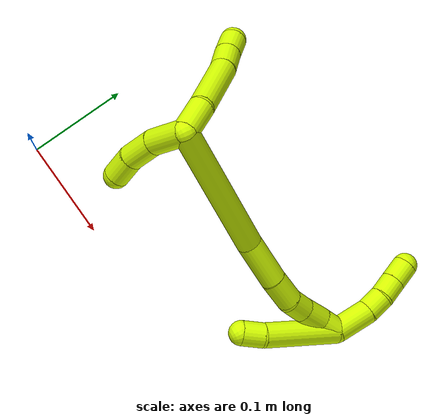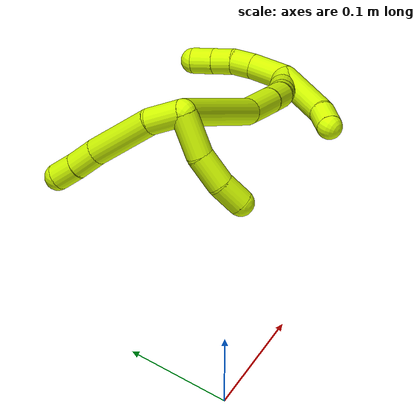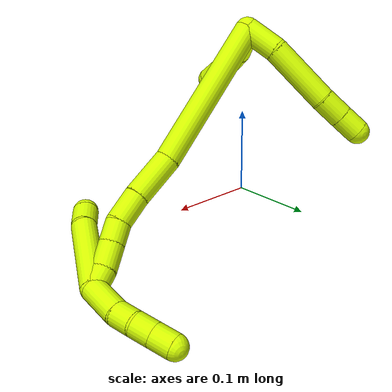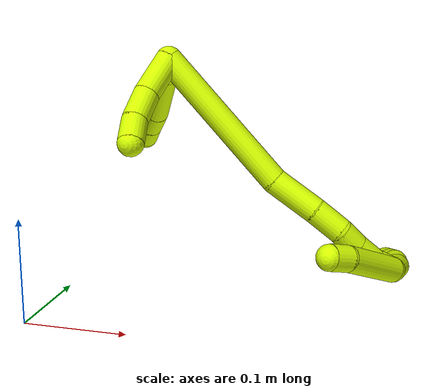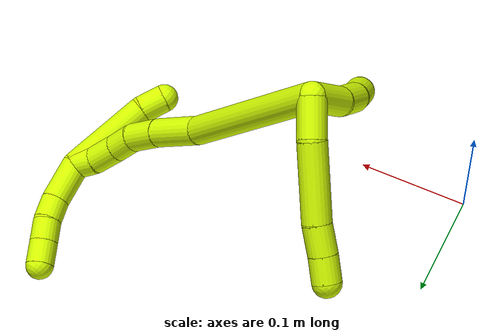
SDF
<sdf version="1.7">
 <world name="default">
  <model name="15">
   <static>0</static>
   <link name="15">
    <collision name="collision-cylinder-e_1_2_8">
     <pose>-0.003615 0.010711 0.013088 -0.685824 -0.210607 0.075434</pose>
     <geometry><cylinder><radius>0.0125</radius><length>0.034589</length></cylinder></geometry>
     <surface>
      <friction><ode><mu>1.16</mu><mu2>1.16</mu2><slip1>0</slip1><slip2>0</slip2></ode></friction>
      <contact><ode><kp>1e+06</kp><kd>1</kd><max_vel>0</max_vel><min_depth>0.001</min_depth></ode></contact>
     </surface>
    </collision>
    <visual name="visual-cylinder-e_1_2_8">
     <pose>-0.003615 0.010711 0.013088 -0.685824 -0.210607 0.075434</pose>
     <geometry><cylinder><radius>0.0125</radius><length>0.034589</length></cylinder></geometry>
     <material><ambient>0.835294 1 0 1</ambient></material>
    </visual>
    <collision name="collision-cylinder-e_2_8_9">
     <pose>-0.010475 0.047329 0.046991 -0.893997 -0.097315 0.046677</pose>
     <geometry><cylinder><radius>0.0125</radius><length>0.066782</length></cylinder></geometry>
     <surface>
      <friction><ode><mu>1.16</mu><mu2>1.16</mu2><slip1>0</slip1><slip2>0</slip2></ode></friction>
      <contact><ode><kp>1e+06</kp><kd>1</kd><max_vel>0</max_vel><min_depth>0.001</min_depth></ode></contact>
     </surface>
    </collision>
    <visual name="visual-cylinder-e_2_8_9">
     <pose>-0.010475 0.047329 0.046991 -0.893997 -0.097315 0.046677</pose>
     <geometry><cylinder><radius>0.0125</radius><length>0.066782</length></cylinder></geometry>
     <material><ambient>0.835294 1 0 1</ambient></material>
    </visual>
    <collision name="collision-cylinder-e_3_9_10">
     <pose>-0.016193 0.083789 0.074762 -0.987879 -0.193287 0.104307</pose>
     <geometry><cylinder><radius>0.0125</radius><length>0.025756</length></cylinder></geometry>
     <surface>
      <friction><ode><mu>1.16</mu><mu2>1.16</mu2><slip1>0</slip1><slip2>0</slip2></ode></friction>
      <contact><ode><kp>1e+06</kp><kd>1</kd><max_vel>0</max_vel><min_depth>0.001</min_depth></ode></contact>
     </surface>
    </collision>
    <visual name="visual-cylinder-e_3_9_10">
     <pose>-0.016193 0.083789 0.074762 -0.987879 -0.193287 0.104307</pose>
     <geometry><cylinder><radius>0.0125</radius><length>0.025756</length></cylinder></geometry>
     <material><ambient>0.835294 1 0 1</ambient></material>
    </visual>
    <collision name="collision-cylinder-e_4_10_6">
     <pose>-0.020695 0.103328 0.088493 -0.924898 -0.178238 0.089029</pose>
     <geometry><cylinder><radius>0.0125</radius><length>0.022873</length></cylinder></geometry>
     <surface>
      <friction><ode><mu>1.16</mu><mu2>1.16</mu2><slip1>0</slip1><slip2>0</slip2></ode></friction>
      <contact><ode><kp>1e+06</kp><kd>1</kd><max_vel>0</max_vel><min_depth>0.001</min_depth></ode></contact>
     </surface>
    </collision>
    <visual name="visual-cylinder-e_4_10_6">
     <pose>-0.020695 0.103328 0.088493 -0.924898 -0.178238 0.089029</pose>
     <geometry><cylinder><radius>0.0125</radius><length>0.022873</length></cylinder></geometry>
     <material><ambient>0.835294 1 0 1</ambient></material>
    </visual>
    <collision name="collision-cylinder-e_1_2_11">
     <pose>0.003413 0.016462 -0.012394 -2.21614 0.164155 -0.326867</pose>
     <geometry><cylinder><radius>0.0125</radius><length>0.041774</length></cylinder></geometry>
     <surface>
      <friction><ode><mu>1.16</mu><mu2>1.16</mu2><slip1>0</slip1><slip2>0</slip2></ode></friction>
      <contact><ode><kp>1e+06</kp><kd>1</kd><max_vel>0</max_vel><min_depth>0.001</min_depth></ode></contact>
     </surface>
    </collision>
    <visual name="visual-cylinder-e_1_2_11">
     <pose>0.003413 0.016462 -0.012394 -2.21614 0.164155 -0.326867</pose>
     <geometry><cylinder><radius>0.0125</radius><length>0.041774</length></cylinder></geometry>
     <material><ambient>0.835294 1 0 1</ambient></material>
    </visual>
    <collision name="collision-cylinder-e_2_11_12">
     <pose>0.012364 0.043072 -0.035781 -2.39614 0.354501 -0.859191</pose>
     <geometry><cylinder><radius>0.0125</radius><length>0.031905</length></cylinder></geometry>
     <surface>
      <friction><ode><mu>1.16</mu><mu2>1.16</mu2><slip1>0</slip1><slip2>0</slip2></ode></friction>
      <contact><ode><kp>1e+06</kp><kd>1</kd><max_vel>0</max_vel><min_depth>0.001</min_depth></ode></contact>
     </surface>
    </collision>
    <visual name="visual-cylinder-e_2_11_12">
     <pose>0.012364 0.043072 -0.035781 -2.39614 0.354501 -0.859191</pose>
     <geometry><cylinder><radius>0.0125</radius><length>0.031905</length></cylinder></geometry>
     <material><ambient>0.835294 1 0 1</ambient></material>
    </visual>
    <collision name="collision-cylinder-e_3_12_5">
     <pose>0.024997 0.060187 -0.055395 -2.46193 0.569406 -1.38288</pose>
     <geometry><cylinder><radius>0.0125</radius><length>0.026321</length></cylinder></geometry>
     <surface>
      <friction><ode><mu>1.16</mu><mu2>1.16</mu2><slip1>0</slip1><slip2>0</slip2></ode></friction>
      <contact><ode><kp>1e+06</kp><kd>1</kd><max_vel>0</max_vel><min_depth>0.001</min_depth></ode></contact>
     </surface>
    </collision>
    <visual name="visual-cylinder-e_3_12_5">
     <pose>0.024997 0.060187 -0.055395 -2.46193 0.569406 -1.38288</pose>
     <geometry><cylinder><radius>0.0125</radius><length>0.026321</length></cylinder></geometry>
     <material><ambient>0.835294 1 0 1</ambient></material>
    </visual>
    <collision name="collision-cylinder-e_1_2_13">
     <pose>0.07168 0.023523 0.011474 -1.11698 1.22071 -0.824056</pose>
     <geometry><cylinder><radius>0.0125</radius><length>0.152617</length></cylinder></geometry>
     <surface>
      <friction><ode><mu>1.16</mu><mu2>1.16</mu2><slip1>0</slip1><slip2>0</slip2></ode></friction>
      <contact><ode><kp>1e+06</kp><kd>1</kd><max_vel>0</max_vel><min_depth>0.001</min_depth></ode></contact>
     </surface>
    </collision>
    <visual name="visual-cylinder-e_1_2_13">
     <pose>0.07168 0.023523 0.011474 -1.11698 1.22071 -0.824056</pose>
     <geometry><cylinder><radius>0.0125</radius><length>0.152617</length></cylinder></geometry>
     <material><ambient>0.835294 1 0 1</ambient></material>
    </visual>
    <collision name="collision-cylinder-e_2_13_14">
     <pose>0.166586 0.0492 0.027283 -0.461073 1.36535 -0.377146</pose>
     <geometry><cylinder><radius>0.0125</radius><length>0.047451</length></cylinder></geometry>
     <surface>
      <friction><ode><mu>1.16</mu><mu2>1.16</mu2><slip1>0</slip1><slip2>0</slip2></ode></friction>
      <contact><ode><kp>1e+06</kp><kd>1</kd><max_vel>0</max_vel><min_depth>0.001</min_depth></ode></contact>
     </surface>
    </collision>
    <visual name="visual-cylinder-e_2_13_14">
     <pose>0.166586 0.0492 0.027283 -0.461073 1.36535 -0.377146</pose>
     <geometry><cylinder><radius>0.0125</radius><length>0.047451</length></cylinder></geometry>
     <material><ambient>0.835294 1 0 1</ambient></material>
    </visual>
    <collision name="collision-cylinder-e_3_14_15">
     <pose>0.204619 0.05371 0.035426 -0.554066 1.2771 -0.416028</pose>
     <geometry><cylinder><radius>0.0125</radius><length>0.030937</length></cylinder></geometry>
     <surface>
      <friction><ode><mu>1.16</mu><mu2>1.16</mu2><slip1>0</slip1><slip2>0</slip2></ode></friction>
      <contact><ode><kp>1e+06</kp><kd>1</kd><max_vel>0</max_vel><min_depth>0.001</min_depth></ode></contact>
     </surface>
    </collision>
    <visual name="visual-cylinder-e_3_14_15">
     <pose>0.204619 0.05371 0.035426 -0.554066 1.2771 -0.416028</pose>
     <geometry><cylinder><radius>0.0125</radius><length>0.030937</length></cylinder></geometry>
     <material><ambient>0.835294 1 0 1</ambient></material>
    </visual>
    <collision name="collision-cylinder-e_4_15_16">
     <pose>0.228546 0.059543 0.044183 -0.612456 0.985202 -0.336199</pose>
     <geometry><cylinder><radius>0.0125</radius><length>0.021888</length></cylinder></geometry>
     <surface>
      <friction><ode><mu>1.16</mu><mu2>1.16</mu2><slip1>0</slip1><slip2>0</slip2></ode></friction>
      <contact><ode><kp>1e+06</kp><kd>1</kd><max_vel>0</max_vel><min_depth>0.001</min_depth></ode></contact>
     </surface>
    </collision>
    <visual name="visual-cylinder-e_4_15_16">
     <pose>0.228546 0.059543 0.044183 -0.612456 0.985202 -0.336199</pose>
     <geometry><cylinder><radius>0.0125</radius><length>0.021888</length></cylinder></geometry>
     <material><ambient>0.835294 1 0 1</ambient></material>
    </visual>
    <collision name="collision-cylinder-e_5_16_17">
     <pose>0.248581 0.066268 0.056012 -0.441016 0.962073 -0.232925</pose>
     <geometry><cylinder><radius>0.0125</radius><length>0.02661</length></cylinder></geometry>
     <surface>
      <friction><ode><mu>1.16</mu><mu2>1.16</mu2><slip1>0</slip1><slip2>0</slip2></ode></friction>
      <contact><ode><kp>1e+06</kp><kd>1</kd><max_vel>0</max_vel><min_depth>0.001</min_depth></ode></contact>
     </surface>
    </collision>
    <visual name="visual-cylinder-e_5_16_17">
     <pose>0.248581 0.066268 0.056012 -0.441016 0.962073 -0.232925</pose>
     <geometry><cylinder><radius>0.0125</radius><length>0.02661</length></cylinder></geometry>
     <material><ambient>0.835294 1 0 1</ambient></material>
    </visual>
    <collision name="collision-cylinder-e_6_17_1">
     <pose>0.268331 0.069482 0.068086 0.006428 1.03931 0.003678</pose>
     <geometry><cylinder><radius>0.0125</radius><length>0.020497</length></cylinder></geometry>
     <surface>
      <friction><ode><mu>1.16</mu><mu2>1.16</mu2><slip1>0</slip1><slip2>0</slip2></ode></friction>
      <contact><ode><kp>1e+06</kp><kd>1</kd><max_vel>0</max_vel><min_depth>0.001</min_depth></ode></contact>
     </surface>
    </collision>
    <visual name="visual-cylinder-e_6_17_1">
     <pose>0.268331 0.069482 0.068086 0.006428 1.03931 0.003678</pose>
     <geometry><cylinder><radius>0.0125</radius><length>0.020497</length></cylinder></geometry>
     <material><ambient>0.835294 1 0 1</ambient></material>
    </visual>
    <collision name="collision-cylinder-e_1_1_18">
     <pose>0.276906 0.072744 0.09174 -0.17666 -0.013847 0.001226</pose>
     <geometry><cylinder><radius>0.0125</radius><length>0.037506</length></cylinder></geometry>
     <surface>
      <friction><ode><mu>1.16</mu><mu2>1.16</mu2><slip1>0</slip1><slip2>0</slip2></ode></friction>
      <contact><ode><kp>1e+06</kp><kd>1</kd><max_vel>0</max_vel><min_depth>0.001</min_depth></ode></contact>
     </surface>
    </collision>
    <visual name="visual-cylinder-e_1_1_18">
     <pose>0.276906 0.072744 0.09174 -0.17666 -0.013847 0.001226</pose>
     <geometry><cylinder><radius>0.0125</radius><length>0.037506</length></cylinder></geometry>
     <material><ambient>0.835294 1 0 1</ambient></material>
    </visual>
    <collision name="collision-cylinder-e_2_18_19">
     <pose>0.27416 0.077875 0.12026 -0.180483 -0.238495 0.021683</pose>
     <geometry><cylinder><radius>0.0125</radius><length>0.021051</length></cylinder></geometry>
     <surface>
      <friction><ode><mu>1.16</mu><mu2>1.16</mu2><slip1>0</slip1><slip2>0</slip2></ode></friction>
      <contact><ode><kp>1e+06</kp><kd>1</kd><max_vel>0</max_vel><min_depth>0.001</min_depth></ode></contact>
     </surface>
    </collision>
    <visual name="visual-cylinder-e_2_18_19">
     <pose>0.27416 0.077875 0.12026 -0.180483 -0.238495 0.021683</pose>
     <geometry><cylinder><radius>0.0125</radius><length>0.021051</length></cylinder></geometry>
     <material><ambient>0.835294 1 0 1</ambient></material>
    </visual>
    <collision name="collision-cylinder-e_3_19_20">
     <pose>0.268731 0.083409 0.139158 -0.396348 -0.298062 0.060283</pose>
     <geometry><cylinder><radius>0.0125</radius><length>0.020042</length></cylinder></geometry>
     <surface>
      <friction><ode><mu>1.16</mu><mu2>1.16</mu2><slip1>0</slip1><slip2>0</slip2></ode></friction>
      <contact><ode><kp>1e+06</kp><kd>1</kd><max_vel>0</max_vel><min_depth>0.001</min_depth></ode></contact>
     </surface>
    </collision>
    <visual name="visual-cylinder-e_3_19_20">
     <pose>0.268731 0.083409 0.139158 -0.396348 -0.298062 0.060283</pose>
     <geometry><cylinder><radius>0.0125</radius><length>0.020042</length></cylinder></geometry>
     <material><ambient>0.835294 1 0 1</ambient></material>
    </visual>
    <collision name="collision-cylinder-e_4_20_4">
     <pose>0.262628 0.090926 0.157478 -0.382836 -0.29979 0.058519</pose>
     <geometry><cylinder><radius>0.0125</radius><length>0.021401</length></cylinder></geometry>
     <surface>
      <friction><ode><mu>1.16</mu><mu2>1.16</mu2><slip1>0</slip1><slip2>0</slip2></ode></friction>
      <contact><ode><kp>1e+06</kp><kd>1</kd><max_vel>0</max_vel><min_depth>0.001</min_depth></ode></contact>
     </surface>
    </collision>
    <visual name="visual-cylinder-e_4_20_4">
     <pose>0.262628 0.090926 0.157478 -0.382836 -0.29979 0.058519</pose>
     <geometry><cylinder><radius>0.0125</radius><length>0.021401</length></cylinder></geometry>
     <material><ambient>0.835294 1 0 1</ambient></material>
    </visual>
    <collision name="collision-cylinder-e_1_1_21">
     <pose>0.260135 0.065909 0.038578 3.03995 -0.454204 -2.70828</pose>
     <geometry><cylinder><radius>0.0125</radius><length>0.077636</length></cylinder></geometry>
     <surface>
      <friction><ode><mu>1.16</mu><mu2>1.16</mu2><slip1>0</slip1><slip2>0</slip2></ode></friction>
      <contact><ode><kp>1e+06</kp><kd>1</kd><max_vel>0</max_vel><min_depth>0.001</min_depth></ode></contact>
     </surface>
    </collision>
    <visual name="visual-cylinder-e_1_1_21">
     <pose>0.260135 0.065909 0.038578 3.03995 -0.454204 -2.70828</pose>
     <geometry><cylinder><radius>0.0125</radius><length>0.077636</length></cylinder></geometry>
     <material><ambient>0.835294 1 0 1</ambient></material>
    </visual>
    <collision name="collision-cylinder-e_2_21_3">
     <pose>0.237152 0.063549 -0.005517 -3.01668 -0.561264 2.7143</pose>
     <geometry><cylinder><radius>0.0125</radius><length>0.022364</length></cylinder></geometry>
     <surface>
      <friction><ode><mu>1.16</mu><mu2>1.16</mu2><slip1>0</slip1><slip2>0</slip2></ode></friction>
      <contact><ode><kp>1e+06</kp><kd>1</kd><max_vel>0</max_vel><min_depth>0.001</min_depth></ode></contact>
     </surface>
    </collision>
    <visual name="visual-cylinder-e_2_21_3">
     <pose>0.237152 0.063549 -0.005517 -3.01668 -0.561264 2.7143</pose>
     <geometry><cylinder><radius>0.0125</radius><length>0.022364</length></cylinder></geometry>
     <material><ambient>0.835294 1 0 1</ambient></material>
    </visual>
    <collision name="collision-sphere-3">
     <pose>0.2312 0.064728 -0.01491 0 -0 0</pose>
     <geometry><sphere><radius>0.0125</radius></sphere></geometry>
     <surface>
      <friction><ode><mu>1.16</mu><mu2>1.16</mu2><slip1>0</slip1><slip2>0</slip2></ode></friction>
      <contact><ode><kp>1e+06</kp><kd>1</kd><max_vel>0</max_vel><min_depth>0.001</min_depth></ode></contact>
     </surface>
    </collision>
    <visual name="visual-sphere-3">
     <pose>0.2312 0.064728 -0.01491 0 -0 0</pose>
     <geometry><sphere><radius>0.0125</radius></sphere></geometry>
     <material><ambient>0.835294 1 0 1</ambient></material>
    </visual>
    <collision name="collision-sphere-21">
     <pose>0.243103 0.06237 0.003876 0 -0 0</pose>
     <geometry><sphere><radius>0.0125</radius></sphere></geometry>
     <surface>
      <friction><ode><mu>1.16</mu><mu2>1.16</mu2><slip1>0</slip1><slip2>0</slip2></ode></friction>
      <contact><ode><kp>1e+06</kp><kd>1</kd><max_vel>0</max_vel><min_depth>0.001</min_depth></ode></contact>
     </surface>
    </collision>
    <visual name="visual-sphere-21">
     <pose>0.243103 0.06237 0.003876 0 -0 0</pose>
     <geometry><sphere><radius>0.0125</radius></sphere></geometry>
     <material><ambient>0.835294 1 0 1</ambient></material>
    </visual>
    <collision name="collision-sphere-4">
     <pose>0.259468 0.094745 0.166961 0 -0 0</pose>
     <geometry><sphere><radius>0.0125</radius></sphere></geometry>
     <surface>
      <friction><ode><mu>1.16</mu><mu2>1.16</mu2><slip1>0</slip1><slip2>0</slip2></ode></friction>
      <contact><ode><kp>1e+06</kp><kd>1</kd><max_vel>0</max_vel><min_depth>0.001</min_depth></ode></contact>
     </surface>
    </collision>
    <visual name="visual-sphere-4">
     <pose>0.259468 0.094745 0.166961 0 -0 0</pose>
     <geometry><sphere><radius>0.0125</radius></sphere></geometry>
     <material><ambient>0.835294 1 0 1</ambient></material>
    </visual>
    <collision name="collision-sphere-20">
     <pose>0.265788 0.087107 0.147995 0 -0 0</pose>
     <geometry><sphere><radius>0.0125</radius></sphere></geometry>
     <surface>
      <friction><ode><mu>1.16</mu><mu2>1.16</mu2><slip1>0</slip1><slip2>0</slip2></ode></friction>
      <contact><ode><kp>1e+06</kp><kd>1</kd><max_vel>0</max_vel><min_depth>0.001</min_depth></ode></contact>
     </surface>
    </collision>
    <visual name="visual-sphere-20">
     <pose>0.265788 0.087107 0.147995 0 -0 0</pose>
     <geometry><sphere><radius>0.0125</radius></sphere></geometry>
     <material><ambient>0.835294 1 0 1</ambient></material>
    </visual>
    <collision name="collision-sphere-11">
     <pose>0.006827 0.032925 -0.024788 0 -0 0</pose>
     <geometry><sphere><radius>0.0125</radius></sphere></geometry>
     <surface>
      <friction><ode><mu>1.16</mu><mu2>1.16</mu2><slip1>0</slip1><slip2>0</slip2></ode></friction>
      <contact><ode><kp>1e+06</kp><kd>1</kd><max_vel>0</max_vel><min_depth>0.001</min_depth></ode></contact>
     </surface>
    </collision>
    <visual name="visual-sphere-11">
     <pose>0.006827 0.032925 -0.024788 0 -0 0</pose>
     <geometry><sphere><radius>0.0125</radius></sphere></geometry>
     <material><ambient>0.835294 1 0 1</ambient></material>
    </visual>
    <collision name="collision-sphere-6">
     <pose>-0.022722 0.112316 0.095268 0 -0 0</pose>
     <geometry><sphere><radius>0.0125</radius></sphere></geometry>
     <surface>
      <friction><ode><mu>1.16</mu><mu2>1.16</mu2><slip1>0</slip1><slip2>0</slip2></ode></friction>
      <contact><ode><kp>1e+06</kp><kd>1</kd><max_vel>0</max_vel><min_depth>0.001</min_depth></ode></contact>
     </surface>
    </collision>
    <visual name="visual-sphere-6">
     <pose>-0.022722 0.112316 0.095268 0 -0 0</pose>
     <geometry><sphere><radius>0.0125</radius></sphere></geometry>
     <material><ambient>0.835294 1 0 1</ambient></material>
    </visual>
    <collision name="collision-sphere-10">
     <pose>-0.018667 0.09434 0.081719 0 -0 0</pose>
     <geometry><sphere><radius>0.0125</radius></sphere></geometry>
     <surface>
      <friction><ode><mu>1.16</mu><mu2>1.16</mu2><slip1>0</slip1><slip2>0</slip2></ode></friction>
      <contact><ode><kp>1e+06</kp><kd>1</kd><max_vel>0</max_vel><min_depth>0.001</min_depth></ode></contact>
     </surface>
    </collision>
    <visual name="visual-sphere-10">
     <pose>-0.018667 0.09434 0.081719 0 -0 0</pose>
     <geometry><sphere><radius>0.0125</radius></sphere></geometry>
     <material><ambient>0.835294 1 0 1</ambient></material>
    </visual>
    <collision name="collision-sphere-9">
     <pose>-0.01372 0.073237 0.067805 0 -0 0</pose>
     <geometry><sphere><radius>0.0125</radius></sphere></geometry>
     <surface>
      <friction><ode><mu>1.16</mu><mu2>1.16</mu2><slip1>0</slip1><slip2>0</slip2></ode></friction>
      <contact><ode><kp>1e+06</kp><kd>1</kd><max_vel>0</max_vel><min_depth>0.001</min_depth></ode></contact>
     </surface>
    </collision>
    <visual name="visual-sphere-9">
     <pose>-0.01372 0.073237 0.067805 0 -0 0</pose>
     <geometry><sphere><radius>0.0125</radius></sphere></geometry>
     <material><ambient>0.835294 1 0 1</ambient></material>
    </visual>
    <collision name="collision-sphere-2">
     <geometry><sphere><radius>0.0125</radius></sphere></geometry>
     <surface>
      <friction><ode><mu>1.16</mu><mu2>1.16</mu2><slip1>0</slip1><slip2>0</slip2></ode></friction>
      <contact><ode><kp>1e+06</kp><kd>1</kd><max_vel>0</max_vel><min_depth>0.001</min_depth></ode></contact>
     </surface>
    </collision>
    <visual name="visual-sphere-2">
     <geometry><sphere><radius>0.0125</radius></sphere></geometry>
     <material><ambient>0.835294 1 0 1</ambient></material>
    </visual>
    <collision name="collision-sphere-19">
     <pose>0.271673 0.079711 0.130322 0 -0 0</pose>
     <geometry><sphere><radius>0.0125</radius></sphere></geometry>
     <surface>
      <friction><ode><mu>1.16</mu><mu2>1.16</mu2><slip1>0</slip1><slip2>0</slip2></ode></friction>
      <contact><ode><kp>1e+06</kp><kd>1</kd><max_vel>0</max_vel><min_depth>0.001</min_depth></ode></contact>
     </surface>
    </collision>
    <visual name="visual-sphere-19">
     <pose>0.271673 0.079711 0.130322 0 -0 0</pose>
     <geometry><sphere><radius>0.0125</radius></sphere></geometry>
     <material><ambient>0.835294 1 0 1</ambient></material>
    </visual>
    <collision name="collision-sphere-8">
     <pose>-0.007231 0.021422 0.026177 0 -0 0</pose>
     <geometry><sphere><radius>0.0125</radius></sphere></geometry>
     <surface>
      <friction><ode><mu>1.16</mu><mu2>1.16</mu2><slip1>0</slip1><slip2>0</slip2></ode></friction>
      <contact><ode><kp>1e+06</kp><kd>1</kd><max_vel>0</max_vel><min_depth>0.001</min_depth></ode></contact>
     </surface>
    </collision>
    <visual name="visual-sphere-8">
     <pose>-0.007231 0.021422 0.026177 0 -0 0</pose>
     <geometry><sphere><radius>0.0125</radius></sphere></geometry>
     <material><ambient>0.835294 1 0 1</ambient></material>
    </visual>
    <collision name="collision-sphere-12">
     <pose>0.017902 0.05322 -0.046774 0 -0 0</pose>
     <geometry><sphere><radius>0.0125</radius></sphere></geometry>
     <surface>
      <friction><ode><mu>1.16</mu><mu2>1.16</mu2><slip1>0</slip1><slip2>0</slip2></ode></friction>
      <contact><ode><kp>1e+06</kp><kd>1</kd><max_vel>0</max_vel><min_depth>0.001</min_depth></ode></contact>
     </surface>
    </collision>
    <visual name="visual-sphere-12">
     <pose>0.017902 0.05322 -0.046774 0 -0 0</pose>
     <geometry><sphere><radius>0.0125</radius></sphere></geometry>
     <material><ambient>0.835294 1 0 1</ambient></material>
    </visual>
    <collision name="collision-sphere-5">
     <pose>0.032092 0.067153 -0.064016 0 -0 0</pose>
     <geometry><sphere><radius>0.0125</radius></sphere></geometry>
     <surface>
      <friction><ode><mu>1.16</mu><mu2>1.16</mu2><slip1>0</slip1><slip2>0</slip2></ode></friction>
      <contact><ode><kp>1e+06</kp><kd>1</kd><max_vel>0</max_vel><min_depth>0.001</min_depth></ode></contact>
     </surface>
    </collision>
    <visual name="visual-sphere-5">
     <pose>0.032092 0.067153 -0.064016 0 -0 0</pose>
     <geometry><sphere><radius>0.0125</radius></sphere></geometry>
     <material><ambient>0.835294 1 0 1</ambient></material>
    </visual>
    <collision name="collision-sphere-13">
     <pose>0.14336 0.047047 0.022948 0 -0 0</pose>
     <geometry><sphere><radius>0.0125</radius></sphere></geometry>
     <surface>
      <friction><ode><mu>1.16</mu><mu2>1.16</mu2><slip1>0</slip1><slip2>0</slip2></ode></friction>
      <contact><ode><kp>1e+06</kp><kd>1</kd><max_vel>0</max_vel><min_depth>0.001</min_depth></ode></contact>
     </surface>
    </collision>
    <visual name="visual-sphere-13">
     <pose>0.14336 0.047047 0.022948 0 -0 0</pose>
     <geometry><sphere><radius>0.0125</radius></sphere></geometry>
     <material><ambient>0.835294 1 0 1</ambient></material>
    </visual>
    <collision name="collision-sphere-14">
     <pose>0.189813 0.051353 0.031618 0 -0 0</pose>
     <geometry><sphere><radius>0.0125</radius></sphere></geometry>
     <surface>
      <friction><ode><mu>1.16</mu><mu2>1.16</mu2><slip1>0</slip1><slip2>0</slip2></ode></friction>
      <contact><ode><kp>1e+06</kp><kd>1</kd><max_vel>0</max_vel><min_depth>0.001</min_depth></ode></contact>
     </surface>
    </collision>
    <visual name="visual-sphere-14">
     <pose>0.189813 0.051353 0.031618 0 -0 0</pose>
     <geometry><sphere><radius>0.0125</radius></sphere></geometry>
     <material><ambient>0.835294 1 0 1</ambient></material>
    </visual>
    <collision name="collision-sphere-15">
     <pose>0.219425 0.056066 0.039234 0 -0 0</pose>
     <geometry><sphere><radius>0.0125</radius></sphere></geometry>
     <surface>
      <friction><ode><mu>1.16</mu><mu2>1.16</mu2><slip1>0</slip1><slip2>0</slip2></ode></friction>
      <contact><ode><kp>1e+06</kp><kd>1</kd><max_vel>0</max_vel><min_depth>0.001</min_depth></ode></contact>
     </surface>
    </collision>
    <visual name="visual-sphere-15">
     <pose>0.219425 0.056066 0.039234 0 -0 0</pose>
     <geometry><sphere><radius>0.0125</radius></sphere></geometry>
     <material><ambient>0.835294 1 0 1</ambient></material>
    </visual>
    <collision name="collision-sphere-16">
     <pose>0.237667 0.06302 0.049132 0 -0 0</pose>
     <geometry><sphere><radius>0.0125</radius></sphere></geometry>
     <surface>
      <friction><ode><mu>1.16</mu><mu2>1.16</mu2><slip1>0</slip1><slip2>0</slip2></ode></friction>
      <contact><ode><kp>1e+06</kp><kd>1</kd><max_vel>0</max_vel><min_depth>0.001</min_depth></ode></contact>
     </surface>
    </collision>
    <visual name="visual-sphere-16">
     <pose>0.237667 0.06302 0.049132 0 -0 0</pose>
     <geometry><sphere><radius>0.0125</radius></sphere></geometry>
     <material><ambient>0.835294 1 0 1</ambient></material>
    </visual>
    <collision name="collision-sphere-17">
     <pose>0.259496 0.069515 0.062892 0 -0 0</pose>
     <geometry><sphere><radius>0.0125</radius></sphere></geometry>
     <surface>
      <friction><ode><mu>1.16</mu><mu2>1.16</mu2><slip1>0</slip1><slip2>0</slip2></ode></friction>
      <contact><ode><kp>1e+06</kp><kd>1</kd><max_vel>0</max_vel><min_depth>0.001</min_depth></ode></contact>
     </surface>
    </collision>
    <visual name="visual-sphere-17">
     <pose>0.259496 0.069515 0.062892 0 -0 0</pose>
     <geometry><sphere><radius>0.0125</radius></sphere></geometry>
     <material><ambient>0.835294 1 0 1</ambient></material>
    </visual>
    <collision name="collision-sphere-1">
     <pose>0.277166 0.069448 0.07328 0 -0 0</pose>
     <geometry><sphere><radius>0.0125</radius></sphere></geometry>
     <surface>
      <friction><ode><mu>1.16</mu><mu2>1.16</mu2><slip1>0</slip1><slip2>0</slip2></ode></friction>
      <contact><ode><kp>1e+06</kp><kd>1</kd><max_vel>0</max_vel><min_depth>0.001</min_depth></ode></contact>
     </surface>
    </collision>
    <visual name="visual-sphere-1">
     <pose>0.277166 0.069448 0.07328 0 -0 0</pose>
     <geometry><sphere><radius>0.0125</radius></sphere></geometry>
     <material><ambient>0.835294 1 0 1</ambient></material>
    </visual>
    <collision name="collision-sphere-18">
     <pose>0.276647 0.076039 0.110199 0 -0 0</pose>
     <geometry><sphere><radius>0.0125</radius></sphere></geometry>
     <surface>
      <friction><ode><mu>1.16</mu><mu2>1.16</mu2><slip1>0</slip1><slip2>0</slip2></ode></friction>
      <contact><ode><kp>1e+06</kp><kd>1</kd><max_vel>0</max_vel><min_depth>0.001</min_depth></ode></contact>
     </surface>
    </collision>
    <visual name="visual-sphere-18">
     <pose>0.276647 0.076039 0.110199 0 -0 0</pose>
     <geometry><sphere><radius>0.0125</radius></sphere></geometry>
     <material><ambient>0.835294 1 0 1</ambient></material>
    </visual>
    <inertial>
     <pose>0.125913 0.051066 0.036562 0 -0 0</pose>
     <mass>0.75</mass>
     <inertia>
      <ixx>1.7e-05</ixx>
      <ixy>0</ixy>
      <ixz>0</ixz>
      <iyy>0.000289</iyy>
      <iyz>0</iyz>
      <izz>-0.000405</izz>
     </inertia>
    </inertial>
   </link>
   <pose>0.107039 0.112274 0.234483 -1.68019 0.494601 -0.196179</pose>
  </model>
 </world>
</sdf>
